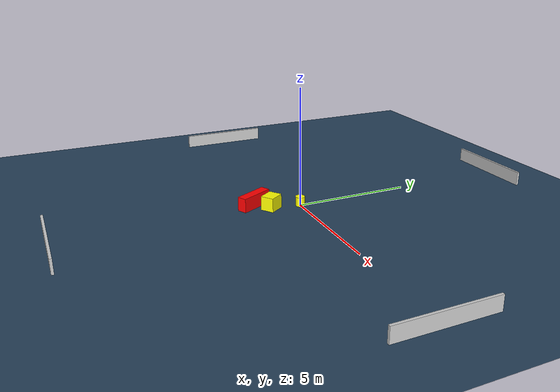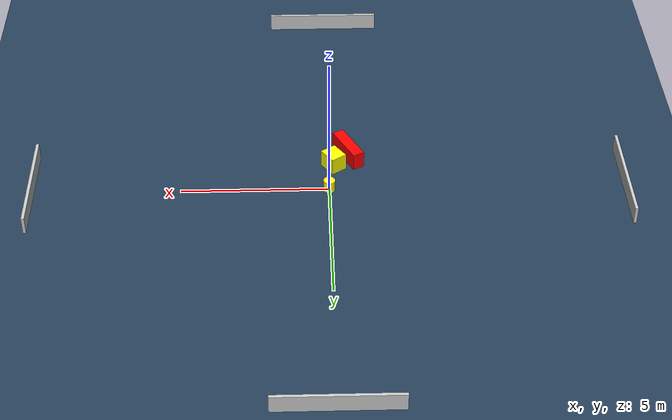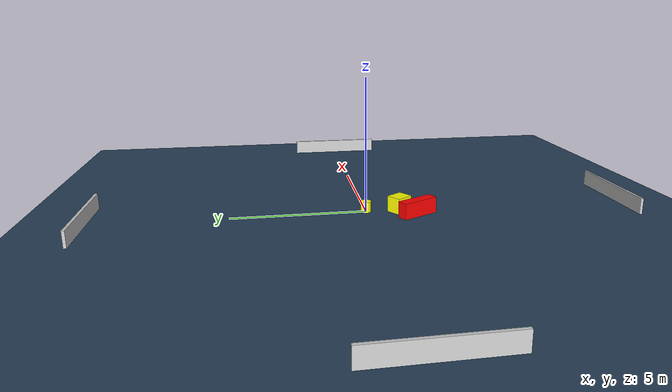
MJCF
<?xml version="1.0" ?>
<mujoco model="generated_environment">
  <option timestep="0.01" integrator="RK4" cone="elliptic"/>
  <default>
    <geom density="1"/>
  </default>
  <asset>
    <texture builtin="gradient" height="3072" name="skybox" rgb1="0.3 0.5 0.7" rgb2="0 0 0" type="skybox" width="512"/>
    <texture builtin="checker" height="300" name="groundplane" rgb1="0.2 0.3 0.4" rgb2="0.1 0.2 0.3" type="2d" width="300"/>
    <material name="groundplane" reflectance="0.2" texrepeat="5 5" texture="groundplane"/>
  </asset>
  <worldbody>
    <light dir="0 0 -1" directional="true" pos="0 0 1.5"/>
    <geom condim="3" friction="0.5 0.005 0.001" material="groundplane" name="floor" pos="0 0 0" size="0 0 0.05" type="plane"/>
    <body name="walls">
      <geom name="wall_1" condim="4" pos="-10.0 0.0 0.3" rgba="0.800000011920929 0.800000011920929 0.800000011920929 1.0" size="0.05 2.0 0.3" type="box"/>
      <geom name="wall_2" condim="4" pos="10.0 0.0 0.3" rgba="0.800000011920929 0.800000011920929 0.800000011920929 1.0" size="0.05 2.0 0.3" type="box"/>
      <geom name="wall_3" condim="4" pos="0.0 -10.0 0.3" rgba="0.800000011920929 0.800000011920929 0.800000011920929 1.0" size="2.0 0.05 0.3" type="box"/>
      <geom name="wall_4" condim="4" pos="0.0 10.0 0.3" rgba="0.800000011920929 0.800000011920929 0.800000011920929 1.0" size="2.0 0.05 0.3" type="box"/>
    </body>
    <body name="robot">
      <joint name="joint_x" type="slide" pos="0 0 0" axis="1 0 0"/>
      <joint name="joint_y" type="slide" pos="0 0 0" axis="0 1 0"/>
      <geom name="robot" type="cylinder" pos="0.0 0.0 0.2" size="0.2 0.2 0.0" mass="5.0" friction="1.0 0.005 0.0001" condim="4" rgba="1.0 1.0 0.0 1.0"/>
    </body>
    <body name="obstacle_1_movable">
      <geom name="obstacle_1_movable" condim="4" pos="-0.1740722297606184 -1.2451141152287772 0.3" euler="0 0 304.6742591496551" friction="0.0 0.005 0.001" rgba="1.0 1.0 0.0 1.0" size="0.3316344782910383 0.28689426611761837 0.3" type="box" mass="0.1"/>
      <joint type="free"/>
    </body>
    <body name="obstacle_2_static">
      <geom name="obstacle_2_static" condim="4" pos="-0.6959241917519058 -1.816159491191441 0.3" euler="0 0 297.2349945728635" friction="0.0 0.005 0.001" rgba="1.0 0.0 0.0 1.0" size="0.7410210078241637 0.20378733756169964 0.3" type="box"/>
    </body>
  </worldbody>
  <actuator>
    <motor name="actuator_x" joint="joint_x" gear="1" ctrlrange="-1 1"/>
    <motor name="actuator_y" joint="joint_y" gear="1" ctrlrange="-1 1"/>
  </actuator>
</mujoco>
